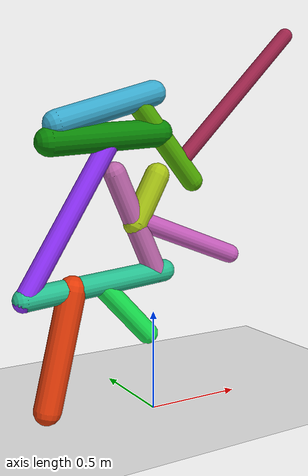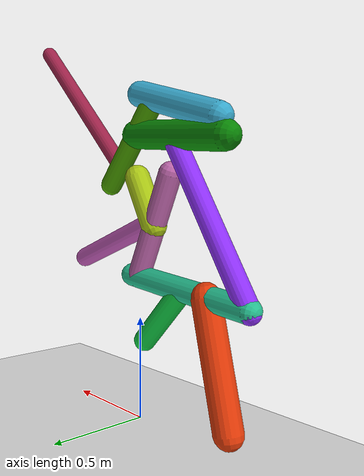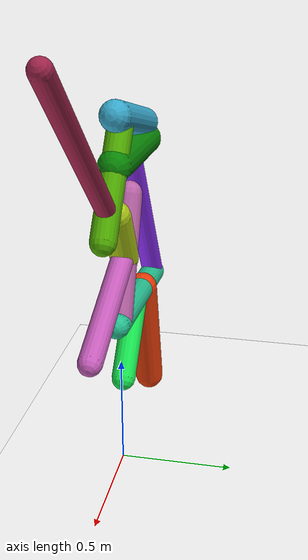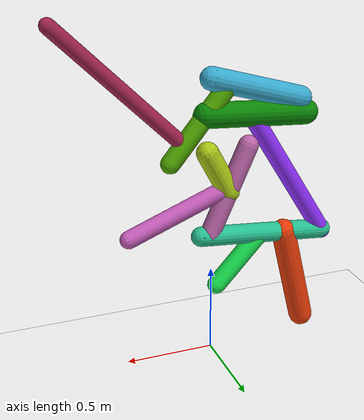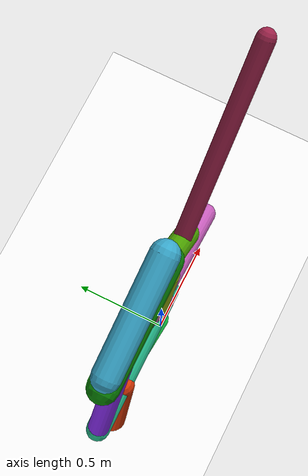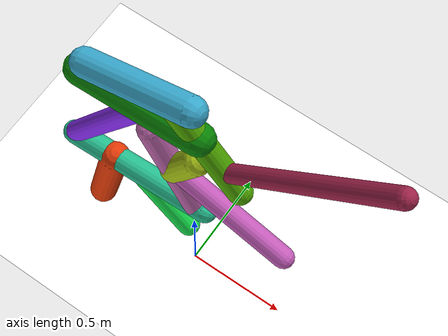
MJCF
<mujoco model="morphology">
  <option timestep="0.01"/>
  <default>
    <default class="/"/>
    <default class="0/"/>
    <default class="0/1/"/>
    <default class="0/1/2/"/>
    <default class="0/1/2/3/"/>
    <default class="0/1/2/3/4/"/>
    <default class="0/1/2/3/4/5/"/>
    <default class="0/1/2/3/4/6/"/>
    <default class="0/1/2/3/4/6/7/"/>
    <default class="0/1/2/3/4/6/7/8/"/>
    <default class="0/1/2/3/4/9/"/>
    <default class="0/1/10/"/>
  </default>
  <asset>
    <texture name="texplane" type="2d" builtin="checker" rgb1="0.10000000000000001 0.20000000000000001 0.29999999999999999" rgb2="0.20000000000000001 0.29999999999999999 0.40000000000000002" width="300" height="300"/>
    <material name="MatPlane" class="/" texture="texplane" texrepeat="20 20" specular="1" shininess="1" reflectance="0.5"/>
  </asset>
  <worldbody>
    <light name="//unnamed_light_0" class="/" directional="true" pos="0 0 1.5" dir="0 0 -1.3" cutoff="100" exponent="1" diffuse="1 1 1" specular="0.10000000000000001 0.10000000000000001 0.10000000000000001"/>
    <geom name="ground" class="/" type="plane" size="15 15 0.5" material="MatPlane" rgba="1 1 1 1"/>
    <site name="body" class="/" size="9.9999999999999995e-07 9.9999999999999995e-07 9.9999999999999995e-07" pos="0 0 1.5938827753067017"/>
    <body pos="0 0 1.5938827753067017" name="0/">
      <joint name="0/rootx/" class="/" type="slide" axis="1 0 0" limited="false" stiffness="0" armature="0" damping="0"/>
      <joint name="0/rootz/" class="/" type="slide" axis="0 0 1" limited="false" stiffness="0" armature="0" damping="0"/>
      <joint name="0/rooty/" class="/" type="hinge" axis="0 1 0" limited="false" stiffness="0" armature="0" damping="0"/>
      <geom name="0/geom" class="0/" type="capsule" contype="1" conaffinity="1" condim="3" size="0.064143560233747912" rgba="0.22149126790763651 0.66324318536275695 0.80451589362562503 1" friction="0.59999999999999998 0.10000000000000001 0.10000000000000001" fromto="0 0 0 -0.50955791173620257 0 -0.1492788793531854"/>
      <site name="0/end0" class="0/" size="0.0050000000000000001" pos="-0.50955791173620257 0 -0.1492788793531854"/>
      <site name="0/attach1" class="0/" size="9.9999999999999995e-07 9.9999999999999995e-07 9.9999999999999995e-07" pos="-0.1023830314498273 0 -0.029993890483491242"/>
      <body pos="-0.1023830314498273 0 -0.029993890483491242" name="0/1/">
        <joint name="0/1/joint/" class="0/" type="hinge" axis="0 1 0" limited="true" range="-48.747413824467372 48.747413824467372"/>
        <geom name="0/1/geom" class="0/1/" type="capsule" contype="1" conaffinity="1" condim="3" size="0.054029300895807333" rgba="0.31177658198884817 0.66483908315910789 0.004883042273119198 1" friction="0.59999999999999998 0.10000000000000001 0.10000000000000001" fromto="0 0 0 0.33351073526798602 0 -0.40624202267851534"/>
        <site name="0/1/end1" class="0/1/" size="0.0050000000000000001" pos="0.33351073526798602 0 -0.40624202267851534"/>
        <site name="0/1/attach2" class="0/1/" size="9.9999999999999995e-07 9.9999999999999995e-07 9.9999999999999995e-07" pos="0.13368297063556078 0 -0.16283625876397934"/>
        <body pos="0.13368297063556078 0 -0.16283625876397934" name="0/1/2/">
          <joint name="0/1/2/joint/" class="0/1/" type="hinge" axis="0 1 0" limited="true" range="-66.094735981531684 66.094735981531684"/>
          <geom name="0/1/2/geom" class="0/1/2/" type="capsule" contype="1" conaffinity="1" condim="3" size="0.069827473350396546" rgba="0.037130728086151699 0.52462253174995144 0.024697293074835702 1" friction="0.59999999999999998 0.10000000000000001 0.10000000000000001" fromto="0 0 0 -0.57666714192373159 0 -0.039990002335974051"/>
          <site name="0/1/2/end2" class="0/1/2/" size="0.0050000000000000001" pos="-0.57666714192373159 0 -0.039990002335974051"/>
          <site name="0/1/2/attach3" class="0/1/2/" size="9.9999999999999995e-07 9.9999999999999995e-07 9.9999999999999995e-07" pos="-0.25433853016393193 0 -0.017637554970539718"/>
          <body pos="-0.25433853016393193 0 -0.017637554970539718" name="0/1/2/3/">
            <joint name="0/1/2/3/joint/" class="0/1/2/" type="hinge" axis="0 1 0" limited="true" range="-34.224616521209981 34.224616521209981"/>
            <geom name="0/1/2/3/geom" class="0/1/2/3/" type="capsule" contype="1" conaffinity="1" condim="3" size="0.050936919590977001" rgba="0.55440203193395465 0.18430823795663942 0.97606737247887676 1" friction="0.59999999999999998 0.10000000000000001 0.10000000000000001" fromto="0 0 0 -0.46039652124901198 0 -0.7473011823498823"/>
            <site name="0/1/2/3/end3" class="0/1/2/3/" size="0.0050000000000000001" pos="-0.46039652124901198 0 -0.7473011823498823"/>
            <site name="0/1/2/3/attach4" class="0/1/2/3/" size="9.9999999999999995e-07 9.9999999999999995e-07 9.9999999999999995e-07" pos="-0.45552403942857106 0 -0.73939232279656608"/>
            <body pos="-0.45552403942857106 0 -0.73939232279656608" name="0/1/2/3/4/">
              <geom name="0/1/2/3/4/geom" class="0/1/2/3/4/" type="capsule" contype="1" conaffinity="1" condim="3" size="0.056237303678707454" rgba="0.14889488541353801 0.75056117837375058 0.56731505005431815 1" friction="0.59999999999999998 0.10000000000000001 0.10000000000000001" fromto="0 0 0 0.73785367550525582 0 0.065870496917095123"/>
              <site name="0/1/2/3/4/end4" class="0/1/2/3/4/" size="0.0050000000000000001" pos="0.73785367550525582 0 0.065870496917095123"/>
              <site name="0/1/2/3/4/attach5" class="0/1/2/3/4/" size="9.9999999999999995e-07 9.9999999999999995e-07 9.9999999999999995e-07" pos="0.23677382466174918 0 0.021137537163788887"/>
              <body pos="0.23677382466174918 0 0.021137537163788887" name="0/1/2/3/4/5/">
                <joint name="0/1/2/3/4/5/joint/" class="0/1/2/3/4/" type="hinge" axis="0 1 0" limited="true" range="-56.851593276699148 56.851593276699148"/>
                <geom name="0/1/2/3/4/5/geom" class="0/1/2/3/4/5/" type="capsule" contype="1" conaffinity="1" condim="3" size="0.068577041133436101" rgba="0.89910652556453741 0.23301126635493941 0.033076141970156625 1" friction="0.59999999999999998 0.10000000000000001 0.10000000000000001" fromto="0 0 0 -0.13477053870838851 0 -0.56516031210747297"/>
                <site name="0/1/2/3/4/5/end5" class="0/1/2/3/4/5/" size="0.0050000000000000001" pos="-0.13477053870838851 0 -0.56516031210747297"/>
              </body>
              <site name="0/1/2/3/4/attach6" class="0/1/2/3/4/" size="9.9999999999999995e-07 9.9999999999999995e-07 9.9999999999999995e-07" pos="0.69091268315189547 0 0.061679928251864719"/>
              <body pos="0.69091268315189547 0 0.061679928251864719" name="0/1/2/3/4/6/">
                <joint name="0/1/2/3/4/6/joint/" class="0/1/2/3/4/" type="hinge" axis="0 1 0" limited="true" range="-36.21507159653487 36.21507159653487"/>
                <geom name="0/1/2/3/4/6/geom" class="0/1/2/3/4/6/" type="capsule" contype="1" conaffinity="1" condim="3" size="0.056288262998436908" rgba="0.74049573231760757 0.39529987849818171 0.66733193199117535 1" friction="0.59999999999999998 0.10000000000000001 0.10000000000000001" fromto="0 0 0 -0.22507528981462377 0 0.50320220463467269"/>
                <site name="0/1/2/3/4/6/end6" class="0/1/2/3/4/6/" size="0.0050000000000000001" pos="-0.22507528981462377 0 0.50320220463467269"/>
                <site name="0/1/2/3/4/6/attach7" class="0/1/2/3/4/6/" size="9.9999999999999995e-07 9.9999999999999995e-07 9.9999999999999995e-07" pos="-0.11343980105234137 0 0.25361805833893009"/>
                <body pos="-0.11343980105234137 0 0.25361805833893009" name="0/1/2/3/4/6/7/">
                  <joint name="0/1/2/3/4/6/7/joint/" class="0/1/2/3/4/6/" type="hinge" axis="0 1 0" limited="true" range="-43.16530096370002 43.16530096370002"/>
                  <geom name="0/1/2/3/4/6/7/geom" class="0/1/2/3/4/6/7/" type="capsule" contype="1" conaffinity="1" condim="3" size="0.062026999128334759" rgba="0.66414772430852953 0.77389249475500088 0.081294223232084684 1" friction="0.59999999999999998 0.10000000000000001 0.10000000000000001" fromto="0 0 0 0.12420074287181837 0 0.23283377358387036"/>
                  <site name="0/1/2/3/4/6/7/end7" class="0/1/2/3/4/6/7/" size="0.0050000000000000001" pos="0.12420074287181837 0 0.23283377358387036"/>
                  <site name="0/1/2/3/4/6/7/attach8" class="0/1/2/3/4/6/7/" size="9.9999999999999995e-07 9.9999999999999995e-07 9.9999999999999995e-07" pos="0.0099456667308515153 0 0.018644712279552333"/>
                  <body pos="0.0099456667308515153 0 0.018644712279552333" name="0/1/2/3/4/6/7/8/">
                    <joint name="0/1/2/3/4/6/7/8/joint/" class="0/1/2/3/4/6/7/" type="hinge" axis="0 1 0" limited="true" range="-57.356583635992422 57.356583635992422"/>
                    <geom name="0/1/2/3/4/6/7/8/geom" class="0/1/2/3/4/6/7/8/" type="capsule" contype="1" conaffinity="1" condim="3" size="0.049545140328402716" rgba="0.77775028740154206 0.36316778004685302 0.73429768465967482 1" friction="0.59999999999999998 0.10000000000000001 0.10000000000000001" fromto="0 0 0 0.56227797753138664 0 -0.21888031281582454"/>
                    <site name="0/1/2/3/4/6/7/8/end8" class="0/1/2/3/4/6/7/8/" size="0.0050000000000000001" pos="0.56227797753138664 0 -0.21888031281582454"/>
                  </body>
                </body>
              </body>
              <site name="0/1/2/3/4/attach9" class="0/1/2/3/4/" size="9.9999999999999995e-07 9.9999999999999995e-07 9.9999999999999995e-07" pos="0.38360386530560348 0 0.034245512444856741"/>
              <body pos="0.38360386530560348 0 0.034245512444856741" name="0/1/2/3/4/9/">
                <joint name="0/1/2/3/4/9/joint/" class="0/1/2/3/4/" type="hinge" axis="0 1 0" limited="true" range="-31.792084465890959 31.792084465890959"/>
                <geom name="0/1/2/3/4/9/geom" class="0/1/2/3/4/9/" type="capsule" contype="1" conaffinity="1" condim="3" size="0.053325805087900517" rgba="0.090574589690562979 0.90209642029594839 0.31262453552545133 1" friction="0.59999999999999998 0.10000000000000001 0.10000000000000001" fromto="0 0 0 0.26041906476311372 0 -0.28130914344458979"/>
                <site name="0/1/2/3/4/9/end9" class="0/1/2/3/4/9/" size="0.0050000000000000001" pos="0.26041906476311372 0 -0.28130914344458979"/>
              </body>
            </body>
          </body>
        </body>
        <site name="0/1/attach10" class="0/1/" size="9.9999999999999995e-07 9.9999999999999995e-07 9.9999999999999995e-07" pos="0.2574930417970821 0 -0.31364655785738715"/>
        <body pos="0.2574930417970821 0 -0.31364655785738715" name="0/1/10/">
          <joint name="0/1/10/joint/" class="0/1/" type="hinge" axis="0 1 0" limited="true" range="-60.78947652077543 60.78947652077543"/>
          <geom name="0/1/10/geom" class="0/1/10/" type="capsule" contype="1" conaffinity="1" condim="3" size="0.040974863510034557" rgba="0.61900807340038544 0.13636056962634768 0.29057183287763511 1" friction="0.59999999999999998 0.10000000000000001 0.10000000000000001" fromto="0 0 0 0.67317162997439395 0 0.67154473912398949"/>
          <site name="0/1/10/end10" class="0/1/10/" size="0.0050000000000000001" pos="0.67317162997439395 0 0.67154473912398949"/>
        </body>
      </body>
      <camera name="0/side" class="0/" mode="trackcom" pos="0.40000000000000002 -4 0.20000000000000001" quat="0.70699999999999996 0.70699999999999996 0 0"/>
    </body>
  </worldbody>
  <actuator>
    <motor name="0/1/motor" class="0/1/" ctrllimited="true" ctrlrange="-1 1" gear="60" joint="0/1/joint/"/>
    <motor name="0/1/2/motor" class="0/1/2/" ctrllimited="true" ctrlrange="-1 1" gear="86" joint="0/1/2/joint/"/>
    <motor name="0/1/2/3/motor" class="0/1/2/3/" ctrllimited="true" ctrlrange="-1 1" gear="73" joint="0/1/2/3/joint/"/>
    <motor name="0/1/2/3/4/5/motor" class="0/1/2/3/4/5/" ctrllimited="true" ctrlrange="-1 1" gear="55" joint="0/1/2/3/4/5/joint/"/>
    <motor name="0/1/2/3/4/6/motor" class="0/1/2/3/4/6/" ctrllimited="true" ctrlrange="-1 1" gear="61" joint="0/1/2/3/4/6/joint/"/>
    <motor name="0/1/2/3/4/6/7/motor" class="0/1/2/3/4/6/7/" ctrllimited="true" ctrlrange="-1 1" gear="67" joint="0/1/2/3/4/6/7/joint/"/>
    <motor name="0/1/2/3/4/6/7/8/motor" class="0/1/2/3/4/6/7/8/" ctrllimited="true" ctrlrange="-1 1" gear="52" joint="0/1/2/3/4/6/7/8/joint/"/>
    <motor name="0/1/2/3/4/9/motor" class="0/1/2/3/4/9/" ctrllimited="true" ctrlrange="-1 1" gear="74" joint="0/1/2/3/4/9/joint/"/>
    <motor name="0/1/10/motor" class="0/1/10/" ctrllimited="true" ctrlrange="-1 1" gear="76" joint="0/1/10/joint/"/>
  </actuator>
  <sensor>
    <subtreelinvel name="velocity" body="0/"/>
  </sensor>
</mujoco>
